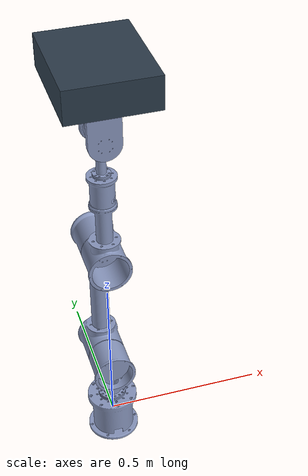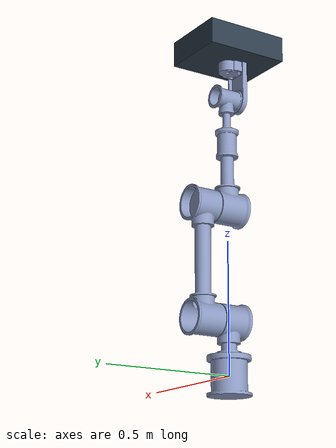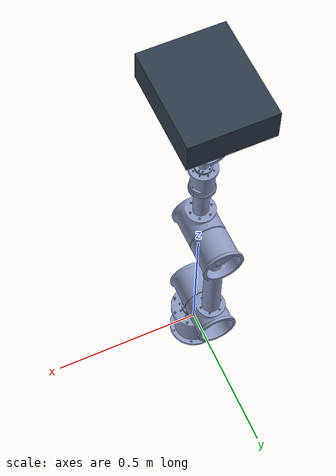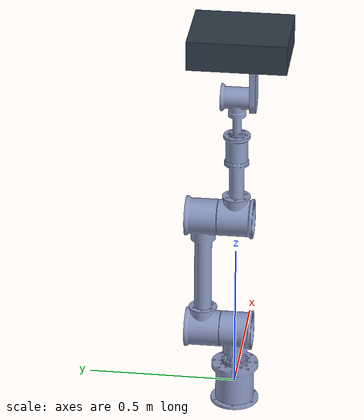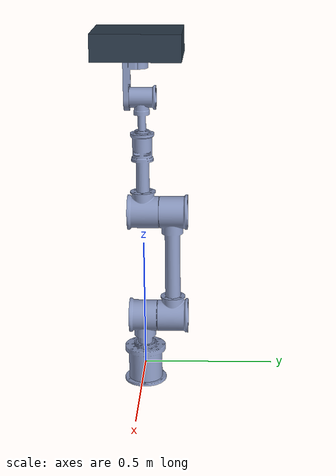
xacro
<?xml version="1.0"?>
<robot xmlns:xacro="http://www.ros.org/wiki/xacro" name="Robot_to_URDF_New_Pakka">
  <xacro:arg name="use_gazebo" default="false"/>
  <xacro:arg name="gazebo_controllers" default="$(find kerabot_moveit_config)/config/ros2_controllers.yaml"/>
  <material name="Steel">
    <color rgba="0.541 0.596 0.749 1.0"/>
  </material>
  <material name="Stainless_Steel_304">
    <color rgba="0.541 0.596 0.749 1.0"/>
  </material>
  <xacro:if value="$(arg use_gazebo)">
    <link name="world"/>
    <joint name="world_to_base_link" type="fixed">
      <parent link="world"/>
      <child link="base_link"/>
      <origin xyz="0 0 0" rpy="0 0 0"/>
    </joint>
  </xacro:if>
  <xacro:include filename="$(find Robot_to_URDF_New_Pakka_description)/urdf/assemblies/J3J4_Elbow.urdf.xacro"/>
  <xacro:include filename="$(find Robot_to_URDF_New_Pakka_description)/urdf/assemblies/J6_holder.urdf.xacro"/>
  <xacro:include filename="$(find Robot_to_URDF_New_Pakka_description)/urdf/assemblies/Robot_Assembly_URDF_New.urdf.xacro"/>
  <xacro:J3J4_Elbow prefix=""/>
  <xacro:J6_holder prefix=""/>
  <xacro:Robot_Assembly_URDF_New prefix=""/>
  <joint name="Revolute_3" type="continuous">
    <parent link="L110I_shoulder_2"/>
    <child link="J2J3_Shoulder"/>
    <origin xyz="0.000000 0.426000 0.003028" rpy="-1.570796 -1.570796 0.000000"/>
    <axis xyz="-1.000000 0.000000 -0.000000"/>
    <limit effort="100.0" velocity="1.00"/>
    <dynamics damping="2.0" friction="0.2"/>
  </joint>
  <joint name="Revolute_4" type="continuous">
    <parent link="J2J3_Shoulder"/>
    <child link="Wrist_Motor"/>
    <origin xyz="0.053972 0.000000 0.314000" rpy="0.000000 0.000000 0.000000"/>
    <axis xyz="-0.000000 0.000000 1.000000"/>
    <limit effort="100.0" velocity="1.00"/>
    <dynamics damping="2.0" friction="0.2"/>
  </joint>
  <joint name="Revolute_5" type="continuous">
    <parent link="Wrist_Motor"/>
    <child link="L70IE_Finger"/>
    <origin xyz="0.059500 0.000000 0.130000" rpy="-0.000787 -1.570796 0.002101"/>
    <axis xyz="-0.000000 0.000000 1.000000"/>
    <limit effort="100.0" velocity="1.00"/>
    <dynamics damping="2.0" friction="0.2"/>
  </joint>
  <ros2_control name="Robot_to_URDF_New_Pakka_system" type="system">
    <hardware>
      <xacro:if value="$(arg use_gazebo)">
        <plugin>gazebo_ros2_control/GazeboSystem</plugin>
      </xacro:if>
      <xacro:unless value="$(arg use_gazebo)">
        <plugin>mock_components/GenericSystem</plugin>
        <param name="cmd_topic">sim/Robot_to_URDF_New_Pakka_system/cmd</param>
        <param name="state_topic">sim/Robot_to_URDF_New_Pakka_system/state</param>
      </xacro:unless>
    </hardware>
    <joint name="Revolute_1">
      <command_interface name="position"/>
      <command_interface name="velocity"/>
      <state_interface name="position">
        <param name="initial_value">0.0</param>
      </state_interface>
      <state_interface name="velocity"/>
      <state_interface name="effort"/>
    </joint>
    <joint name="Revolute_2">
      <command_interface name="position"/>
      <command_interface name="velocity"/>
      <state_interface name="position">
        <param name="initial_value">0.0</param>
      </state_interface>
      <state_interface name="velocity"/>
      <state_interface name="effort"/>
    </joint>
    <joint name="Revolute_3">
      <command_interface name="position"/>
      <command_interface name="velocity"/>
      <state_interface name="position">
        <param name="initial_value">0.0</param>
      </state_interface>
      <state_interface name="velocity"/>
      <state_interface name="effort"/>
    </joint>
    <joint name="Revolute_4">
      <command_interface name="position"/>
      <command_interface name="velocity"/>
      <state_interface name="position">
        <param name="initial_value">0.0</param>
      </state_interface>
      <state_interface name="velocity"/>
      <state_interface name="effort"/>
    </joint>
    <joint name="Revolute_5">
      <command_interface name="position"/>
      <command_interface name="velocity"/>
      <state_interface name="position">
        <param name="initial_value">0.0</param>
      </state_interface>
      <state_interface name="velocity"/>
      <state_interface name="effort"/>
    </joint>
    <joint name="ee_rotation_joint">
      <command_interface name="position"/>
      <command_interface name="velocity"/>
      <state_interface name="position">
        <param name="initial_value">0.0</param>
      </state_interface>
      <state_interface name="velocity"/>
      <state_interface name="effort"/>
    </joint>
  </ros2_control>
  <xacro:if value="$(arg use_gazebo)">
    <gazebo>
      <plugin filename="libgazebo_ros2_control.so" name="gazebo_ros2_control">
        <parameters>$(arg gazebo_controllers)</parameters>
        <robot_param>robot_description</robot_param>
        <robot_param_node>robot_state_publisher</robot_param_node>
      </plugin>
    </gazebo>
    <gazebo reference="base_link">
      <mu1>0.8</mu1>
      <mu2>0.8</mu2>
      <kp>1000000.0</kp>
      <kd>1.0</kd>
      <material>Gazebo/Grey</material>
    </gazebo>
    <gazebo reference="L110I_Shoulder">
      <mu1>0.8</mu1>
      <mu2>0.8</mu2>
      <material>Gazebo/Grey</material>
    </gazebo>
    <gazebo reference="L110I_shoulder_2">
      <mu1>0.8</mu1>
      <mu2>0.8</mu2>
      <material>Gazebo/Grey</material>
    </gazebo>
    <gazebo reference="J2J3_Shoulder">
      <mu1>0.8</mu1>
      <mu2>0.8</mu2>
      <material>Gazebo/Grey</material>
    </gazebo>
    <gazebo reference="Wrist_Motor">
      <mu1>0.8</mu1>
      <mu2>0.8</mu2>
      <material>Gazebo/Grey</material>
    </gazebo>
    <gazebo reference="L70IE_Finger">
      <mu1>0.8</mu1>
      <mu2>0.8</mu2>
      <material>Gazebo/Green</material>
    </gazebo>
    <gazebo reference="end_effector_box_link">
      <mu1>1.2</mu1>
      <mu2>1.2</mu2>
      <kp>1000000.0</kp>
      <kd>1.0</kd>
      <material>Gazebo/DarkGrey</material>
    </gazebo>
  </xacro:if>
</robot>

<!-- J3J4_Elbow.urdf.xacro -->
<robot xmlns:xacro="http://www.ros.org/wiki/xacro" name="J3J4_Elbow_macro">
  <xacro:macro name="J3J4_Elbow" params="prefix">
    <link name="${prefix}J2J3_Shoulder">
      <inertial>
        <origin xyz="0.051916 -0.000049 0.158128" rpy="0 0 0"/>
        <mass value="3.446640"/>
        <inertia ixx="4.362083e-02" ixy="9.815616e-07" ixz="-1.144201e-03"
                 iyy="4.371374e-02" iyz="1.314195e-05" izz="4.606072e-03"/>
      </inertial>
      <visual>
        <origin xyz="0.053972 0.000000 0.077000" rpy="0 0 0"/>
        <geometry>
          <mesh filename="package://Robot_to_URDF_New_Pakka_description/meshes/J3J4_Elbow/J2J3_Shoulder.dae" scale="1 1 1"/>
        </geometry>
        <material name="Steel"/>
      </visual>
      <collision>
        <origin xyz="0.053972 0.000000 0.077000" rpy="0 0 0"/>
        <geometry>
          <mesh filename="package://Robot_to_URDF_New_Pakka_description/meshes/J3J4_Elbow/J2J3_Shoulder_collision.stl" scale="0.01 0.01 0.01"/>
        </geometry>
      </collision>
    </link>
  </xacro:macro>
</robot>

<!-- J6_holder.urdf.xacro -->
<robot xmlns:xacro="http://www.ros.org/wiki/xacro" name="J6_holder_macro">
  <xacro:macro name="J6_holder" params="prefix">
    <link name="${prefix}L70IE_Finger">
      <inertial>
        <origin xyz="0.129200 -0.000053 0.034929" rpy="0 0 0"/>
        <mass value="1.714129"/>
        <inertia ixx="2.168825e-03" ixy="-1.977919e-06" ixz="-9.238266e-04"
                 iyy="4.945738e-03" iyz="2.017023e-06" izz="4.814753e-03"/>
      </inertial>
      <visual>
        <origin xyz="0.109800 -0.000000 0.050000" rpy="0 0 0"/>
        <geometry>
          <mesh filename="package://Robot_to_URDF_New_Pakka_description/meshes/J6_holder/L70IE_Finger.dae" scale="1 1 1"/>
        </geometry>
        <material name="Stainless_Steel_304"/>
      </visual>
      <collision>
        <origin xyz="0.109800 -0.000000 0.050000" rpy="0 0 0"/>
        <geometry>
          <mesh filename="package://Robot_to_URDF_New_Pakka_description/meshes/J6_holder/L70IE_Finger_collision.stl" scale="0.01 0.01 0.01"/>
        </geometry>
      </collision>
    </link>
    <joint name="${prefix}ee_rotation_joint" type="revolute">
      <parent link="${prefix}L70IE_Finger"/>
      <child link="${prefix}end_effector_box_link"/>
      <origin xyz="0.150 0 0.050" rpy="0 1.5708 0"/>
      <axis xyz="0 0 1"/>
      <limit lower="-3.14159" upper="3.14159" effort="10.0" velocity="3.14"/>
      <dynamics damping="1.0" friction="0.1"/>
    </joint>
    <link name="${prefix}end_effector_box_link">
      <inertial>
        <origin xyz="0 0 0.050" rpy="0 0 0"/>
        <mass value="1.2"/>
        <inertia ixx="8.129e-03" ixy="0" ixz="0"
                 iyy="1.182e-02" iyz="0" izz="1.795e-02"/>
      </inertial>
      <visual>
        <origin xyz="0 0 0.050" rpy="0 0 0"/>
        <geometry>
          <box size="0.329 0.267 0.100"/>
        </geometry>
        <material name="EE_Grey">
          <color rgba="0.17 0.23 0.29 0.9"/>
        </material>
      </visual>
      <collision>
        <origin xyz="0 0 0.050" rpy="0 0 0"/>
        <geometry>
          <box size="0.329 0.267 0.100"/>
        </geometry>
      </collision>
    </link>
  </xacro:macro>
</robot>

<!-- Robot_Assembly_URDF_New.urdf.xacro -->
<robot xmlns:xacro="http://www.ros.org/wiki/xacro" name="Robot_Assembly_URDF_New_macro">
  <xacro:macro name="Robot_Assembly_URDF_New" params="prefix">
    <link name="${prefix}base_link">
      <inertial>
        <origin xyz="-0.000000 0.000148 0.020775" rpy="0 0 0"/>
        <mass value="10.528007"/>
        <inertia ixx="3.546454e-02" ixy="-3.583128e-11" ixz="-4.191711e-11"
                 iyy="3.556442e-02" iyz="1.226315e-04" izz="2.879027e-02"/>
      </inertial>
      <visual>
        <origin xyz="0.000000 0.000000 0.000000" rpy="0 0 0"/>
        <geometry>
          <mesh filename="package://Robot_to_URDF_New_Pakka_description/meshes/Robot_Assembly_URDF_New/base_link.dae" scale="1 1 1"/>
        </geometry>
        <material name="Steel"/>
      </visual>
      <collision>
        <origin xyz="0.000000 0.000000 0.000000" rpy="0 0 0"/>
        <geometry>
          <mesh filename="package://Robot_to_URDF_New_Pakka_description/meshes/Robot_Assembly_URDF_New/base_link_collision.stl" scale="0.01 0.01 0.01"/>
        </geometry>
      </collision>
    </link>
    <link name="${prefix}Wrist_Motor">
      <inertial>
        <origin xyz="0.010896 -0.000044 0.108189" rpy="0 0 0"/>
        <mass value="2.109552"/>
        <inertia ixx="4.701895e-03" ixy="-2.639002e-06" ixz="-5.009290e-04"
                 iyy="5.708233e-03" iyz="2.609188e-06" izz="2.625985e-03"/>
      </inertial>
      <visual>
        <origin xyz="-0.015700 0.000000 0.130000" rpy="0 0 0"/>
        <geometry>
          <mesh filename="package://Robot_to_URDF_New_Pakka_description/meshes/Robot_Assembly_URDF_New/Wrist_Motor.dae" scale="1 1 1"/>
        </geometry>
        <material name="Stainless_Steel_304"/>
      </visual>
      <collision>
        <origin xyz="-0.015700 0.000000 0.130000" rpy="0 0 0"/>
        <geometry>
          <mesh filename="package://Robot_to_URDF_New_Pakka_description/meshes/Robot_Assembly_URDF_New/Wrist_Motor_collision.stl" scale="0.01 0.01 0.01"/>
        </geometry>
      </collision>
    </link>
    <link name="${prefix}L110I_Shoulder">
      <inertial>
        <origin xyz="0.000000 -0.109833 0.011323" rpy="0 0 0"/>
        <mass value="6.625323"/>
        <inertia ixx="1.448067e-02" ixy="-1.914920e-08" ixz="-1.120154e-08"
                 iyy="9.292438e-03" iyz="6.850439e-04" izz="1.576078e-02"/>
      </inertial>
      <visual>
        <origin xyz="-0.000000 -0.119000 -0.023000" rpy="0 0 0"/>
        <geometry>
          <mesh filename="package://Robot_to_URDF_New_Pakka_description/meshes/Robot_Assembly_URDF_New/L110I_Shoulder.dae" scale="1 1 1"/>
        </geometry>
        <material name="Steel"/>
      </visual>
      <collision>
        <origin xyz="-0.000000 -0.119000 -0.023000" rpy="0 0 0"/>
        <geometry>
          <mesh filename="package://Robot_to_URDF_New_Pakka_description/meshes/Robot_Assembly_URDF_New/L110I_Shoulder_collision.stl" scale="0.01 0.01 0.01"/>
        </geometry>
      </collision>
    </link>
    <link name="${prefix}L110I_shoulder_2">
      <inertial>
        <origin xyz="-0.000000 0.332413 -0.045103" rpy="0 0 0"/>
        <mass value="9.267654"/>
        <inertia ixx="2.063923e-01" ixy="1.193072e-08" ixz="1.229002e-08"
                 iyy="1.345004e-02" iyz="-4.638621e-03" izz="2.074487e-01"/>
      </inertial>
      <visual>
        <origin xyz="0.000000 0.426000 -0.076972" rpy="0 0 0"/>
        <geometry>
          <mesh filename="package://Robot_to_URDF_New_Pakka_description/meshes/Robot_Assembly_URDF_New/L110I_shoulder_2.dae" scale="1 1 1"/>
        </geometry>
        <material name="Steel"/>
      </visual>
      <collision>
        <origin xyz="0.000000 0.426000 -0.076972" rpy="0 0 0"/>
        <geometry>
          <mesh filename="package://Robot_to_URDF_New_Pakka_description/meshes/Robot_Assembly_URDF_New/L110I_shoulder_2_collision.stl" scale="0.01 0.01 0.01"/>
        </geometry>
      </collision>
    </link>
    <joint name="${prefix}Revolute_1" type="continuous">
      <parent link="${prefix}base_link"/>
      <child link="${prefix}L110I_Shoulder"/>
      <origin xyz="0.000000 0.000000 0.080000" rpy="-1.570796 0.000000 -0.000000"/>
      <axis xyz="0.000000 1.000000 -0.000000"/>
      <limit effort="100.0" velocity="1.00"/>
      <dynamics damping="2.0" friction="0.2"/>
    </joint>
    <joint name="${prefix}Revolute_2" type="continuous">
      <parent link="${prefix}L110I_Shoulder"/>
      <child link="${prefix}L110I_shoulder_2"/>
      <origin xyz="-0.000000 -0.119000 0.057000" rpy="3.141593 0.000000 -0.000000"/>
      <axis xyz="0.000000 -0.000000 1.000000"/>
      <limit effort="100.0" velocity="1.00"/>
      <dynamics damping="2.0" friction="0.2"/>
    </joint>
  </xacro:macro>
</robot>
